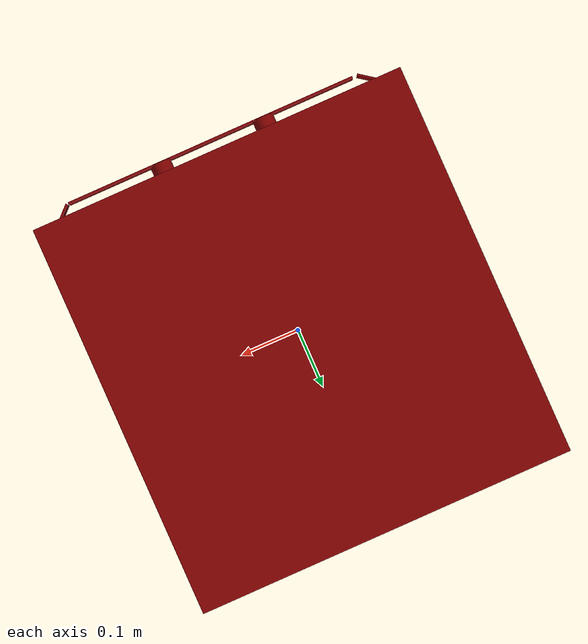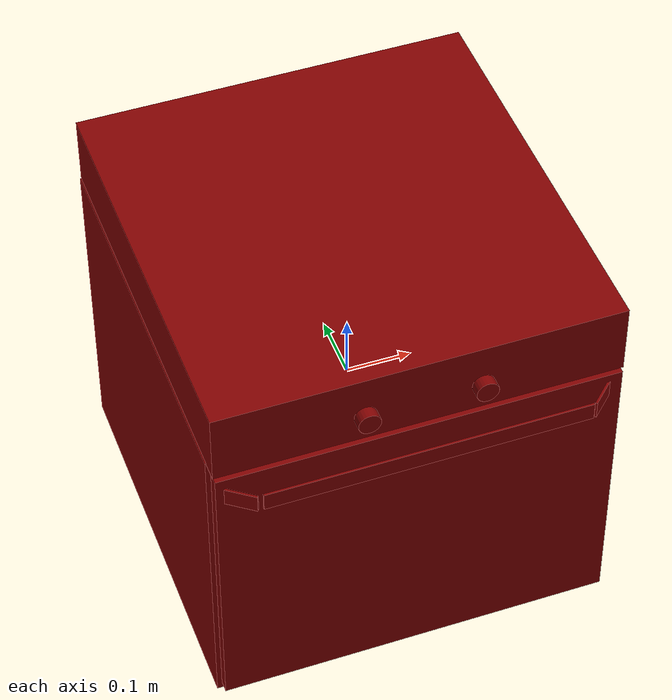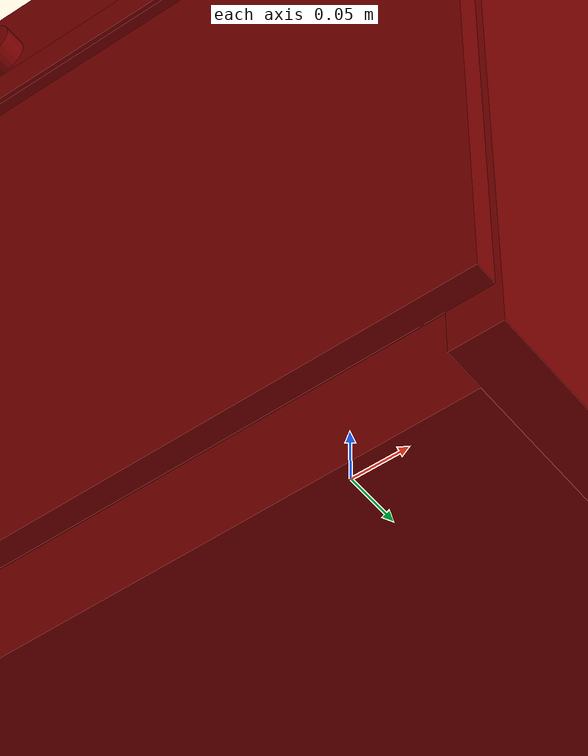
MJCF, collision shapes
<mujoco model="model">
  <compiler angle="radian"/>
  <asset>
    <mesh file="visuals/Body001.obj" name="Body001_vis"/>
    <mesh file="visuals/Container001.obj" name="Container001_vis"/>
    <mesh file="visuals/Door001.obj" name="Door001_vis"/>
    <mesh file="visuals/Door001_Clear.obj" name="Door001_Clear_vis"/>
    <mesh file="visuals/Knob001.obj" name="Knob001_vis"/>
    <mesh file="visuals/Knob002.obj" name="Knob002_vis"/>
    <mesh file="visuals/Shelf001.obj" name="Shelf001_vis"/>
    <texture file="visuals/T_BC001.png" name="Body001_material" type="2d"/>
    <material name="Body001_material" rgba="1 1 1 1.0" texture="Body001_material" shininess="2.5" specular="1.5"/>
    <texture file="visuals/T_BC001.png" name="Container001_material" type="2d"/>
    <material name="Container001_material" rgba="1 1 1 1.0" texture="Container001_material" shininess="0.141421377658844" specular="0.3103448502657381"/>
    <texture file="visuals/T_BC001.png" name="Door001_material" type="2d"/>
    <material name="Door001_material" rgba="1 1 1 1.0" texture="Door001_material" shininess="0.5" specular="0.9"/>
    <texture file="visuals/T_BC001.png" name="Door001_Clear_material" type="2d"/>
    <material name="Door001_Clear_material" rgba="1 1 1 0.6836158037185669" texture="Door001_Clear_material" shininess="0.141421377658844" specular="0.3103448502657381"/>
    <texture file="visuals/T_BC001.png" name="Knob001_material" type="2d"/>
    <material name="Knob001_material" rgba="1 1 1 1.0" texture="Knob001_material" shininess="0.141421377658844" specular="0.3103448502657381"/>
    <texture file="visuals/T_BC001.png" name="Knob002_material" type="2d"/>
    <material name="Knob002_material" rgba="1 1 1 1.0" texture="Knob002_material" shininess="0.141421377658844" specular="0.3103448502657381"/>
    <texture file="visuals/T_BC001.png" name="Shelf001_material" type="2d"/>
    <material name="Shelf001_material" rgba="1 1 1 1.0" texture="Shelf001_material" shininess="3.5" specular="1.5"/>
  </asset>
  <default>
    <default class="visual">
      <geom conaffinity="0" contype="0" group="1" type="mesh"/>
    </default>
    <default class="collision">
      <geom group="0" rgba="0.5 0 0 0.5"/>
    </default>
    <default class="spawn">
      <geom group="0" rgba="1 1 1 0.5" contype="0" conaffinity="0"/>
      <site group="0" rgba="1 1 1 0.5"/>
    </default>
    <default class="region">
      <geom group="1" conaffinity="0" contype="0" rgba="0 1 0 0"/>
    </default>
  </default>
  <worldbody>
    <body>
      <body name="object">
        <geom mesh="Body001_vis" type="mesh" solimp="0.998 0.998 0.001" solref="0.001 1" density="100" friction="0.95 0.3 0.1" class="visual" material="Body001_material"/>
        <geom class="collision" type="box" pos="0.000093 0.016719 0.249132" size="0.2994467616081238 0.3126707971096039 0.05593641847372055" quat="1.0 0.0 0.0 0.0"/>
        <geom class="collision" type="box" pos="-0.281428 0.030101 -0.055615" size="0.01983589306473732 0.2992875874042511 0.25095704197883606" quat="1.0 0.0 0.0 0.0"/>
        <geom class="collision" type="box" pos="0.279697 0.030951 -0.055615" size="0.019835852086544037 0.2984372079372406 0.2509567141532898" quat="1.0 0.0 0.0 0.0"/>
        <geom class="collision" type="box" pos="-0.003975 0.047674 0.153786" size="0.26644960045814514 0.28171050548553467 0.04155224934220314" quat="1.0 0.0 0.0 0.0"/>
        <geom class="collision" type="box" pos="-0.003975 0.047674 -0.264145" size="0.2664492726325989 0.281710147857666 0.041552163660526276" quat="1.0 0.0 0.0 0.0"/>
        <geom class="collision" type="box" pos="-0.003975 0.237032 -0.019616" size="0.2664489448070526 0.09235040098428726 0.20817235112190247" quat="1.0 0.0 0.0 0.0"/>
        <body name="Container001">
          <joint axis="0.0 -1.0 0.0" pos="0.000653 -0.066930 0.023950" limited="true" name="Container001_joint" range="0.0 0.2" type="slide" damping="1" frictionloss="1" armature=".01" stiffness="0.05"/>
          <geom mesh="Container001_vis" type="mesh" solimp="0.998 0.998 0.001" solref="0.001 1" density="100" friction="0.95 0.3 0.1" class="visual" material="Container001_material"/>
          <geom class="collision" type="box" pos="0.000834 -0.075485 0.023914" size="0.176955908536911 0.135758638381958 0.005540007259696722" quat="1.0 0.0 0.0 0.0"/>
        </body>
        <body name="Door001">
          <joint axis="1.0 0.0 0.0" pos="0.000538 -0.293356 -0.288232" limited="true" name="Door001_joint" range="0 1.15" type="hinge" damping="5" frictionloss="1" armature=".01" stiffness="0.05"/>
          <geom mesh="Door001_vis" type="mesh" solimp="0.998 0.998 0.001" solref="0.001 1" density="100" friction="0.95 0.3 0.1" class="visual" material="Door001_material"/>
          <geom class="collision" type="box" pos="0.002230 -0.285383 -0.051063" size="0.2982577383518219 0.008782844990491867 0.23269832134246826" quat="1.0 0.0 0.0 0.0"/>
          <geom class="collision" type="box" pos="0.003668 -0.324912 0.154171" size="0.24166740477085114 0.0017287449445575476 0.014042295515537262" quat="1.0 0.0 0.0 0.0"/>
          <geom class="collision" type="box" pos="0.265332 -0.308491 0.154171" size="0.02361122891306877 0.0017287449445575476 0.014042295515537262" quat="0.9275559186935425 0.0 0.0 0.3736843764781952"/>
          <geom class="collision" type="box" pos="-0.265049 -0.311442 0.154171" size="0.02361122891306877 0.0017287449445575476 0.014042295515537262" quat="0.9500517845153809 0.0 -0.0 -0.31209230422973633"/>
          <body name="Door001_Clear">
            <geom mesh="Door001_Clear_vis" type="mesh" solimp="0.998 0.998 0.001" solref="0.001 1" density="100" friction="0.95 0.3 0.1" class="visual" material="Door001_Clear_material"/>
            <geom class="collision" type="box" pos="0.000495 -0.288650 -0.031117" size="0.20893527567386627 0.002611293224617839 0.14597749710083008" quat="1.0 0.0 0.0 0.0"/>
          </body>
        </body>
        <body name="Knob001">
          <joint axis="0.0 1.0 0.0" pos="-0.083075 -0.305981 0.241092" limited="true" name="Knob001_joint" range="0.0 5.235987755982989" type="hinge" damping="0.05" armature="0.001"/>
          <geom mesh="Knob001_vis" type="mesh" solimp="0.998 0.998 0.001" solref="0.001 1" density="100" friction="0.95 0.3 0.1" class="visual" material="Knob001_material"/>
          <geom class="collision" type="cylinder" pos="-0.082954 -0.308114 0.240881" size="0.0165864247828722 0.008633961901068687" quat="0.7071067094802856 0.7071068286895752 0.0 0.0"/>
        </body>
        <body name="Knob002">
          <joint axis="0.0 1.0 0.0" pos="0.087160 -0.305981 0.241092" limited="true" name="Knob002_joint" range="0.0 4.886921905584122" type="hinge" damping="0.05" armature="0.001"/>
          <geom mesh="Knob002_vis" type="mesh" solimp="0.998 0.998 0.001" solref="0.001 1" density="100" friction="0.95 0.3 0.1" class="visual" material="Knob002_material"/>
          <geom class="collision" type="cylinder" pos="0.087232 -0.308114 0.240881" size="0.0165864247828722 0.008633961901068687" quat="0.7071067094802856 0.7071068286895752 0.0 0.0"/>
        </body>
        <body name="Shelf001">
          <joint axis="0.0 -1.0 0.0" pos="0.002179 -0.070384 -0.134269" limited="true" name="Shelf001_joint" range="0.0 0.2" type="slide" damping="1" frictionloss="1" armature=".01" stiffness="0.05"/>
          <geom mesh="Shelf001_vis" type="mesh" solimp="0.998 0.998 0.001" solref="0.001 1" density="100" friction="0.95 0.3 0.1" class="visual" material="Shelf001_material"/>
          <geom class="collision" type="box" pos="0.003488 -0.075485 -0.131993" size="0.17695584893226624 0.135758638381958 0.004289531148970127" quat="1.0 0.0 0.0 0.0"/>
          <geom class="region" name="reg_rack_bottom" type="box" pos="0.0 -0.075 -0.06" size="0.14 0.12 0.07"/>
        </body>
        <geom class="region" name="reg_main" type="box" pos="0.0 0.015456999999999999 0.0005000000000000004" size="0.303 0.311457 0.3065"/>
      </body>
    </body>
  </worldbody>
  <actuator>
    <motor name="Container001_joint_actuator" joint="Container001_joint" gear="10"/>
    <motor name="Door001_joint_actuator" joint="Door001_joint" gear="50"/>
    <motor name="Knob001_joint_actuator" joint="Knob001_joint" gear="50"/>
    <motor name="Knob002_joint_actuator" joint="Knob002_joint" gear="50"/>
    <motor name="Shelf001_joint_actuator" joint="Shelf001_joint" gear="50"/>
  </actuator>
</mujoco>
